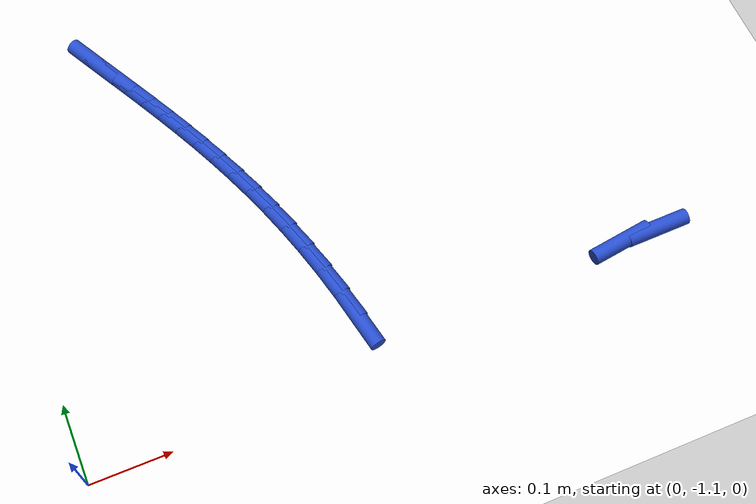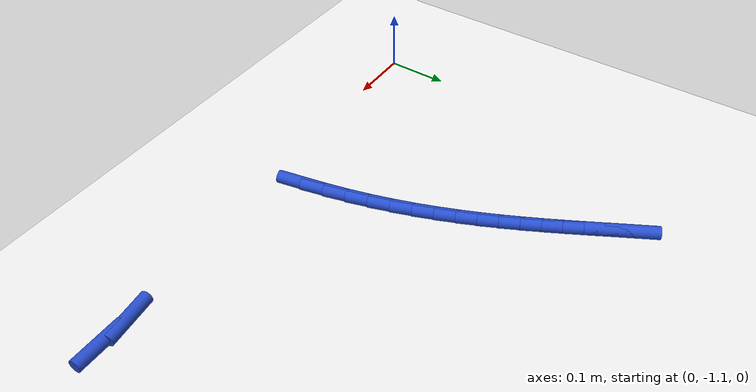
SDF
<sdf version="1.6">
 <world name="default">
  <model name="ground_plane">
   <static>1</static>
   <link name="link">
    <collision name="collision">
     <geometry><plane><normal>0 0 1</normal><size>100 100</size></plane></geometry>
     <surface><friction><ode><mu>100</mu><mu2>50</mu2></ode></friction></surface>
    </collision>
    <visual name="visual">
     <cast_shadows>0</cast_shadows>
     <geometry><plane><normal>0 0 1</normal><size>100 100</size></plane></geometry>
     <material>
      <script><uri>file://media/materials/scripts/gazebo.material</uri><name>Gazebo/WhiteGlow</name></script>
     </material>
    </visual>
   </link>
  </model>
  <model name="line">
   <link name="link_231">
    <pose>0.7330645528249963 -1.063189139308043 0.01 0 1.57 0.015697875619448822</pose>
    <collision name="collision">
     <geometry><cylinder><radius>0.01</radius><length>0.08</length></cylinder></geometry>
    </collision>
    <visual name="visual">
     <material>
      <script><name>Gazebo/Blue</name><uri>file://media/materials/scripts/gazebo.material</uri></script>
     </material>
     <geometry><cylinder><radius>0.01</radius><length>0.08</length></cylinder></geometry>
    </visual>
   </link>
   <link name="link_232">
    <pose>0.683737952290711 -1.06396352575796 0.01 0 1.57 0.1354992121213618</pose>
    <collision name="collision">
     <geometry><cylinder><radius>0.01</radius><length>0.08</length></cylinder></geometry>
    </collision>
    <visual name="visual">
     <material>
      <script><name>Gazebo/Blue</name><uri>file://media/materials/scripts/gazebo.material</uri></script>
     </material>
     <geometry><cylinder><radius>0.01</radius><length>0.08</length></cylinder></geometry>
    </visual>
   </link>
   <link name="link_246">
    <pose>0.3544529063449677 -1.0342458261647802 0.01 0 1.57 -1.3725027434845605</pose>
    <collision name="collision">
     <geometry><cylinder><radius>0.01</radius><length>0.08</length></cylinder></geometry>
    </collision>
    <visual name="visual">
     <material>
      <script><name>Gazebo/Blue</name><uri>file://media/materials/scripts/gazebo.material</uri></script>
     </material>
     <geometry><cylinder><radius>0.01</radius><length>0.08</length></cylinder></geometry>
    </visual>
   </link>
   <link name="link_247">
    <pose>0.34674814849526947 -0.9959011282094775 0.01 0 1.57 -1.3390567265599016</pose>
    <collision name="collision">
     <geometry><cylinder><radius>0.01</radius><length>0.08</length></cylinder></geometry>
    </collision>
    <visual name="visual">
     <material>
      <script><name>Gazebo/Blue</name><uri>file://media/materials/scripts/gazebo.material</uri></script>
     </material>
     <geometry><cylinder><radius>0.01</radius><length>0.08</length></cylinder></geometry>
    </visual>
   </link>
   <link name="link_248">
    <pose>0.33809281202920666 -0.9592227227512699 0.01 0 1.57 -1.3058504007858462</pose>
    <collision name="collision">
     <geometry><cylinder><radius>0.01</radius><length>0.08</length></cylinder></geometry>
    </collision>
    <visual name="visual">
     <material>
      <script><name>Gazebo/Blue</name><uri>file://media/materials/scripts/gazebo.material</uri></script>
     </material>
     <geometry><cylinder><radius>0.01</radius><length>0.08</length></cylinder></geometry>
    </visual>
   </link>
   <link name="link_249">
    <pose>0.32855890081885075 -0.9240843137548761 0.01 0 1.57 -1.2732823548998238</pose>
    <collision name="collision">
     <geometry><cylinder><radius>0.01</radius><length>0.08</length></cylinder></geometry>
    </collision>
    <visual name="visual">
     <material>
      <script><name>Gazebo/Blue</name><uri>file://media/materials/scripts/gazebo.material</uri></script>
     </material>
     <geometry><cylinder><radius>0.01</radius><length>0.08</length></cylinder></geometry>
    </visual>
   </link>
   <link name="link_250">
    <pose>0.31821841873627305 -0.8903596051850149 0.01 0 1.57 -1.2417771011217136</pose>
    <collision name="collision">
     <geometry><cylinder><radius>0.01</radius><length>0.08</length></cylinder></geometry>
    </collision>
    <visual name="visual">
     <material>
      <script><name>Gazebo/Blue</name><uri>file://media/materials/scripts/gazebo.material</uri></script>
     </material>
     <geometry><cylinder><radius>0.01</radius><length>0.08</length></cylinder></geometry>
    </visual>
   </link>
   <link name="link_251">
    <pose>0.3071433696535447 -0.8579223010064043 0.01 0 1.57 -1.2117723119508899</pose>
    <collision name="collision">
     <geometry><cylinder><radius>0.01</radius><length>0.08</length></cylinder></geometry>
    </collision>
    <visual name="visual">
     <material>
      <script><name>Gazebo/Blue</name><uri>file://media/materials/scripts/gazebo.material</uri></script>
     </material>
     <geometry><cylinder><radius>0.01</radius><length>0.08</length></cylinder></geometry>
    </visual>
   </link>
   <link name="link_252">
    <pose>0.29540575744273684 -0.8266461051837626 0.01 0 1.57 -1.1837048699582422</pose>
    <collision name="collision">
     <geometry><cylinder><radius>0.01</radius><length>0.08</length></cylinder></geometry>
    </collision>
    <visual name="visual">
     <material>
      <script><name>Gazebo/Blue</name><uri>file://media/materials/scripts/gazebo.material</uri></script>
     </material>
     <geometry><cylinder><radius>0.01</radius><length>0.08</length></cylinder></geometry>
    </visual>
   </link>
   <link name="link_253">
    <pose>0.2830775859759214 -0.7964047216818098 0.01 0 1.57 -1.1579968678842962</pose>
    <collision name="collision">
     <geometry><cylinder><radius>0.01</radius><length>0.08</length></cylinder></geometry>
    </collision>
    <visual name="visual">
     <material>
      <script><name>Gazebo/Blue</name><uri>file://media/materials/scripts/gazebo.material</uri></script>
     </material>
     <geometry><cylinder><radius>0.01</radius><length>0.08</length></cylinder></geometry>
    </visual>
   </link>
   <link name="link_254">
    <pose>0.27023085912516925 -0.7670718544652635 0.01 0 1.57 -1.1350426412913122</pose>
    <collision name="collision">
     <geometry><cylinder><radius>0.01</radius><length>0.08</length></cylinder></geometry>
    </collision>
    <visual name="visual">
     <material>
      <script><name>Gazebo/Blue</name><uri>file://media/materials/scripts/gazebo.material</uri></script>
     </material>
     <geometry><cylinder><radius>0.01</radius><length>0.08</length></cylinder></geometry>
    </visual>
   </link>
   <link name="link_255">
    <pose>0.25693758076255174 -0.7385212074988422 0.01 0 1.57 -1.1151976759710496</pose>
    <collision name="collision">
     <geometry><cylinder><radius>0.01</radius><length>0.08</length></cylinder></geometry>
    </collision>
    <visual name="visual">
     <material>
      <script><name>Gazebo/Blue</name><uri>file://media/materials/scripts/gazebo.material</uri></script>
     </material>
     <geometry><cylinder><radius>0.01</radius><length>0.08</length></cylinder></geometry>
    </visual>
   </link>
   <link name="link_256">
    <pose>0.2432697547601403 -0.7106264847472648 0.01 0 1.57 -1.0987698704277735</pose>
    <collision name="collision">
     <geometry><cylinder><radius>0.01</radius><length>0.08</length></cylinder></geometry>
    </collision>
    <visual name="visual">
     <material>
      <script><name>Gazebo/Blue</name><uri>file://media/materials/scripts/gazebo.material</uri></script>
     </material>
     <geometry><cylinder><radius>0.01</radius><length>0.08</length></cylinder></geometry>
    </visual>
   </link>
   <link name="link_257">
    <pose>0.22929938499000602 -0.6832613901752493 0.01 0 1.57 -1.0860132400605134</pose>
    <collision name="collision">
     <geometry><cylinder><radius>0.01</radius><length>0.08</length></cylinder></geometry>
    </collision>
    <visual name="visual">
     <material>
      <script><name>Gazebo/Blue</name><uri>file://media/materials/scripts/gazebo.material</uri></script>
     </material>
     <geometry><cylinder><radius>0.01</radius><length>0.08</length></cylinder></geometry>
    </visual>
   </link>
   <link name="link_258">
    <pose>0.21509847532422027 -0.6562996277475147 0.01 0 1.57 -1.0771238124682443</pose>
    <collision name="collision">
     <geometry><cylinder><radius>0.01</radius><length>0.08</length></cylinder></geometry>
    </collision>
    <visual name="visual">
     <material>
      <script><name>Gazebo/Blue</name><uri>file://media/materials/scripts/gazebo.material</uri></script>
     </material>
     <geometry><cylinder><radius>0.01</radius><length>0.08</length></cylinder></geometry>
    </visual>
   </link>
   <link name="link_259">
    <pose>0.20073902963485452 -0.6296149014287796 0.01 0 1.57 -1.0722372458034986</pose>
    <collision name="collision">
     <geometry><cylinder><radius>0.01</radius><length>0.08</length></cylinder></geometry>
    </collision>
    <visual name="visual">
     <material>
      <script><name>Gazebo/Blue</name><uri>file://media/materials/scripts/gazebo.material</uri></script>
     </material>
     <geometry><cylinder><radius>0.01</radius><length>0.08</length></cylinder></geometry>
    </visual>
   </link>
   <link name="link_260">
    <pose>0.18629305179397984 -0.6030809151837623 0.01 0 1.57 -1.0714276315759772</pose>
    <collision name="collision">
     <geometry><cylinder><radius>0.01</radius><length>0.08</length></cylinder></geometry>
    </collision>
    <visual name="visual">
     <material>
      <script><name>Gazebo/Blue</name><uri>file://media/materials/scripts/gazebo.material</uri></script>
     </material>
     <geometry><cylinder><radius>0.01</radius><length>0.08</length></cylinder></geometry>
    </visual>
   </link>
   <link name="link_261">
    <pose>0.1718325456736672 -0.5765713729771804 0.01 0 1.57 -1.0747070128896785</pose>
    <collision name="collision">
     <geometry><cylinder><radius>0.01</radius><length>0.08</length></cylinder></geometry>
    </collision>
    <visual name="visual">
     <material>
      <script><name>Gazebo/Blue</name><uri>file://media/materials/scripts/gazebo.material</uri></script>
     </material>
     <geometry><cylinder><radius>0.01</radius><length>0.08</length></cylinder></geometry>
    </visual>
   </link>
  </model>
 </world>
</sdf>
